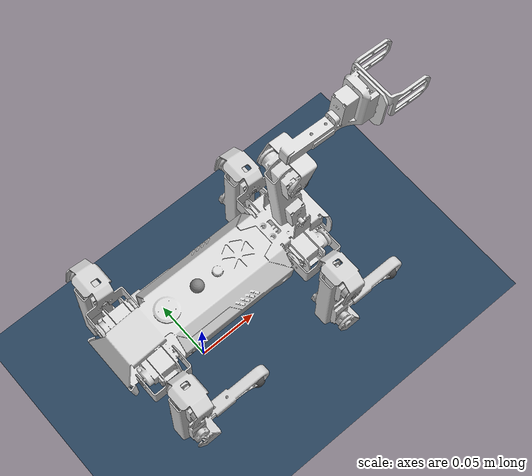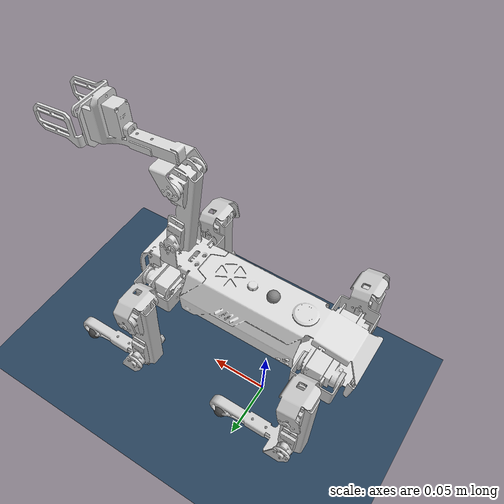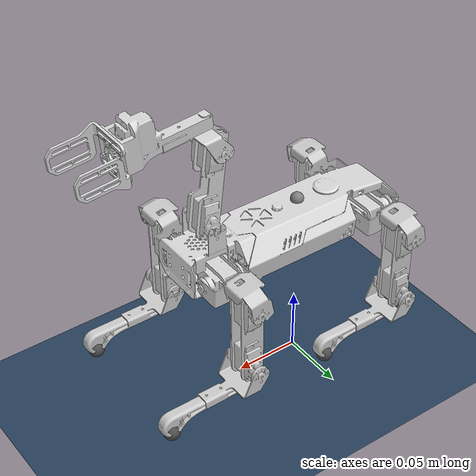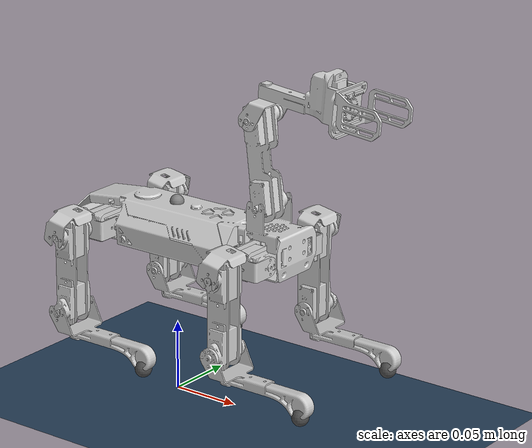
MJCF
<mujoco model="xgolite scene">
  <include file="xgolite.xml" />

  <statistic center="0 0 0.08" extent="0.45" />

  <visual>
    <headlight diffuse="0.6 0.6 0.6" ambient="0.3 0.3 0.3" specular="0 0 0" />
    <rgba haze="0.15 0.25 0.35 1" />
    <global azimuth="120" elevation="-15" />
  </visual>

  <asset>
    <texture type="skybox" builtin="gradient" rgb1="0.3 0.5 0.7" rgb2="0 0 0"
             width="512" height="3072" />
    <texture type="2d" name="groundplane" builtin="checker" mark="edge"
             rgb1="0.2 0.3 0.4" rgb2="0.1 0.2 0.3" markrgb="0.8 0.8 0.8"
             width="300" height="300" />
    <material name="groundplane" texture="groundplane" texuniform="true"
              texrepeat="5 5" reflectance="0.2" />
  </asset>

  <worldbody>
    <light pos="0 0 1.5" dir="0 0 -1" directional="true" />
    <geom name="floor" size="0 0 0.05" type="plane" material="groundplane" />
  </worldbody>

  <keyframe>
    <key name="stand"
         qpos="0 0 0.1159 1 0 0 0
               0 -0.90 0.28  0 -0.90 0.28  0 -0.90 0.28  0 -0.90 0.28" />
    <key name="urdf_zero"
         qpos="0 0 0.107 1 0 0 0
               0 0 0  0 0 0  0 0 0  0 0 0" />
  </keyframe>
</mujoco>

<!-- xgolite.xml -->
<mujoco model="xgolite">
  <compiler angle="radian" meshdir="meshes" />
  <option timestep="0.002" />

  <default>
    <joint damping="0.05" frictionloss="0.001" armature="0.002" />
    <default class="joint_motor">
      <position kp="5.0" kv="0.12" forcerange="-0.22 0.22" />
    </default>
    <default class="visual">
      <geom contype="0" conaffinity="0" density="0" group="1" />
    </default>
    <default class="collision_off">
      <geom contype="0" conaffinity="0" density="0" group="3" />
    </default>
  </default>

  <asset>
    <mesh name="Link_11" file="Link_11.STL" />
    <mesh name="Link_12" file="Link_12.STL" />
    <mesh name="Link_13" file="Link_13.STL" />
    <mesh name="Link_21" file="Link_21.STL" />
    <mesh name="Link_22" file="Link_22.STL" />
    <mesh name="Link_23" file="Link_23.STL" />
    <mesh name="Link_31" file="Link_31.STL" />
    <mesh name="Link_32" file="Link_32.STL" />
    <mesh name="Link_33" file="Link_33.STL" />
    <mesh name="Link_41" file="Link_41.STL" />
    <mesh name="Link_42" file="Link_42.STL" />
    <mesh name="Link_43" file="Link_43.STL" />
    <mesh name="Link_50" file="Link_50.STL" />
    <mesh name="Link_51" file="Link_51.STL" />
    <mesh name="Link_52" file="Link_52.STL" />
    <mesh name="Link_53" file="Link_53.STL" />
    <mesh name="base_link" file="base_link.STL" />
  </asset>

  <sensor>
    <framequat name="orientation" objtype="site" noise="0.001" objname="imu" />
    <gyro name="angular-velocity" site="imu" noise="0.005" />
    <gyro name="imu_ang_vel" site="imu" />
    <velocimeter name="imu_lin_vel" site="imu" />
    <accelerometer name="imu_accel" site="imu" />
    <subtreeangmom name="root_angmom" body="base" />
  </sensor>

  <worldbody>
    <body name="base" pos="0 0 0.14">
      <joint name="floating_base" type="free" />
      <inertial pos="0.04356602 0.00009192 0.00080861" mass="0.3778381" fullinertia="0.0006712271 0.001867972 0.001346259 -2.176181e-07 -0.0004660935 -9.16711e-07" />
      <geom class="visual" type="mesh" mesh="base_link" pos="0 0 0" quat="1 0 0 0" rgba="0.85 0.85 0.85 1" />
      <geom class="visual" type="mesh" mesh="base_link" pos="0 0 0" quat="1 0 0 0" rgba="0.85 0.85 0.85 1" />
      <geom class="visual" type="mesh" mesh="Link_53" pos="0.07976 0.016106 0.015289" quat="0.529269 0.529269 0.468908 -0.468908" rgba="0.85 0.85 0.85 1" />
      <geom class="visual" type="mesh" mesh="Link_53" pos="0.07976 0.016106 0.015289" quat="0.529269 0.529269 0.468908 -0.468908" rgba="0.85 0.85 0.85 1" />
      <geom class="visual" type="mesh" mesh="Link_52" pos="0.072542 0.016106 0.074753" quat="0.611876 0.611876 -0.354411 0.354411" rgba="0.85 0.85 0.85 1" />
      <geom class="visual" type="mesh" mesh="Link_52" pos="0.072542 0.016106 0.074753" quat="0.611876 0.611876 -0.354411 0.354411" rgba="0.85 0.85 0.85 1" />
      <geom class="visual" type="mesh" mesh="Link_51" pos="0.144234 0.000006 0.092979" quat="0.032365 0.032365 -0.706366 0.706366" rgba="0.85 0.85 0.85 1" />
      <geom class="visual" type="mesh" mesh="Link_51" pos="0.144234 0.000006 0.092979" quat="0.032365 0.032365 -0.706366 0.706366" rgba="0.85 0.85 0.85 1" />
      <geom class="visual" type="mesh" mesh="Link_50" pos="0.144234 0.000006 0.092979" quat="0.706366 -0.706366 0.032365 0.032365" rgba="0.85 0.85 0.85 1" />
      <geom class="visual" type="mesh" mesh="Link_50" pos="0.144234 0.000006 0.092979" quat="0.706366 -0.706366 0.032365 0.032365" rgba="0.85 0.85 0.85 1" />
      <geom name="base" type="box" size="0.090477 0.03435 0.026442" pos="0.01266 0.000006 -0.006491"
            density="0" contype="1" conaffinity="0" condim="1" group="3" />
      <site name="imu" pos="0 0 0" quat="1 0 0 0" />

      <body name="fl_hip" pos="0.097794 0.022506 -0.019901">
        <joint name="fl_hip_joint" pos="0 0 0" axis="1 0 0" range="-0.8283 1.1045" actuatorfrcrange="-0.22 0.22" />
        <inertial pos="-0.01793087 0.02930826 -0.00003285" mass="0.02021624" fullinertia="4.484471e-06 2.349163e-06 4.881753e-06 2.41143e-08 -4.226267e-07 -1.822547e-08" />
        <geom class="visual" type="mesh" mesh="Link_13" pos="0 0 0" quat="0.5 0.5 0.5 0.5" rgba="0.8 0.8 0.8 1" />
            <geom class="visual" type="mesh" mesh="Link_13" pos="0 0 0" quat="0.5 0.5 0.5 0.5" rgba="0.8 0.8 0.8 1" />
        <geom name="fl_hip_col" type="box" size="0.015 0.022 0.013" pos="0 0 0" class="collision_off" />
        <body name="fl_thigh" pos="-0.0161 0.046599 0">
          <joint name="fl_thigh_joint" pos="0 0 0" axis="0 -1 0" range="-1.7692 1.5135" actuatorfrcrange="-0.22 0.22" />
          <inertial pos="-0.00134002 -0.01562723 -0.04416079" mass="0.02128252" fullinertia="8.009481e-06 6.810089e-06 2.39069e-06 -6.981811e-08 4.968359e-07 4.329529e-07" />
          <geom class="visual" type="mesh" mesh="Link_12" pos="0 0 0" quat="0.5 -0.5 0.5 0.5" rgba="0.8 0.8 0.8 1" />
            <geom class="visual" type="mesh" mesh="Link_12" pos="0 0 0" quat="0.5 -0.5 0.5 0.5" rgba="0.8 0.8 0.8 1" />
          <geom name="fl_thigh" type="capsule" fromto="0 0 0 0 0 -0.0549" size="0.010" density="0" contype="1" conaffinity="0" condim="1" group="3" />
          <body name="fl_calf" pos="0 0 -0.0549">
            <joint name="fl_calf_joint" pos="0 0 0" axis="0 -1 0" range="-2.0146 1.5647" actuatorfrcrange="-0.22 0.22" />
            <inertial pos="0.02550979 -0.01751858 -0.01644801" mass="0.008291711" fullinertia="7.078578e-07 3.752423e-06 3.846524e-06 8.783708e-08 6.03516e-07 -2.915457e-08" />
            <geom class="visual" type="mesh" mesh="Link_11" pos="0 0 0" quat="0.707107 -0.707107 0 0" rgba="0.8 0.8 0.8 1" />
            <geom class="visual" type="mesh" mesh="Link_11" pos="0 0 0" quat="0.707107 -0.707107 0 0" rgba="0.8 0.8 0.8 1" />
            <geom name="fl_calf" type="capsule" fromto="0 0 0 0.062796 -0.01805 -0.031197" size="0.006" class="collision_off" />
            <geom name="fl_foot_pad" type="sphere" size="0.006" pos="0.062796 -0.01805 -0.031197" density="0" contype="1" conaffinity="0" condim="3" rgba="0.3 0.3 0.3 1" />
            <site name="fl" pos="0.062796 -0.01805 -0.031197" type="sphere" size="0.004" />
          </body>
        </body>
      </body>
      <body name="fr_hip" pos="0.097794 -0.022494 -0.019901">
        <joint name="fr_hip_joint" pos="0 0 0" axis="-1 0 0" range="-0.7926 1.0278" actuatorfrcrange="-0.22 0.22" />
        <inertial pos="-0.01793072 -0.02930438 -0.00003289" mass="0.02021624" fullinertia="4.484531e-06 2.349129e-06 4.881813e-06 -2.409765e-08 -4.226077e-07 1.819006e-08" />
        <geom class="visual" type="mesh" mesh="Link_23" pos="0 0 0" quat="0.5 0.5 0.5 0.5" rgba="0.8 0.8 0.8 1" />
            <geom class="visual" type="mesh" mesh="Link_23" pos="0 0 0" quat="0.5 0.5 0.5 0.5" rgba="0.8 0.8 0.8 1" />
        <geom name="fr_hip_col" type="box" size="0.015 0.022 0.013" pos="0 0 0" class="collision_off" />
        <body name="fr_thigh" pos="-0.0161 -0.046599 0">
          <joint name="fr_thigh_joint" pos="0 0 0" axis="0 -1 0" range="-1.805 1.4266" actuatorfrcrange="-0.22 0.22" />
          <inertial pos="-0.00134006 0.01563126 -0.04416092" mass="0.02128252" fullinertia="8.009556e-06 6.81012e-06 2.390721e-06 6.982942e-08 4.968354e-07 -4.330395e-07" />
          <geom class="visual" type="mesh" mesh="Link_22" pos="0 0 0" quat="0.5 -0.5 0.5 0.5" rgba="0.8 0.8 0.8 1" />
            <geom class="visual" type="mesh" mesh="Link_22" pos="0 0 0" quat="0.5 -0.5 0.5 0.5" rgba="0.8 0.8 0.8 1" />
          <geom name="fr_thigh" type="capsule" fromto="0 0 0 0 0 -0.0549" size="0.010" density="0" contype="1" conaffinity="0" condim="1" group="3" />
          <body name="fr_calf" pos="0 0 -0.0549">
            <joint name="fr_calf_joint" pos="0 0 0" axis="0 -1 0" range="-1.943 1.6618" actuatorfrcrange="-0.22 0.22" />
            <inertial pos="0.02550977 0.01752298 -0.01644799" mass="0.008291706" fullinertia="7.078577e-07 3.752421e-06 3.846522e-06 -8.783705e-08 6.035157e-07 2.915456e-08" />
            <geom class="visual" type="mesh" mesh="Link_21" pos="0 0 0" quat="0.707107 -0.707107 0 0" rgba="0.8 0.8 0.8 1" />
            <geom class="visual" type="mesh" mesh="Link_21" pos="0 0 0" quat="0.707107 -0.707107 0 0" rgba="0.8 0.8 0.8 1" />
            <geom name="fr_calf" type="capsule" fromto="0 0 0 0.062796 0.01805 -0.031197" size="0.006" class="collision_off" />
            <geom name="fr_foot_pad" type="sphere" size="0.006" pos="0.062796 0.01805 -0.031197" density="0" contype="1" conaffinity="0" condim="3" rgba="0.3 0.3 0.3 1" />
            <site name="fr" pos="0.062796 0.01805 -0.031197" type="sphere" size="0.004" />
          </body>
        </body>
      </body>
      <body name="bl_hip" pos="-0.068306 0.022506 -0.019901">
        <joint name="bl_hip_joint" pos="0 0 0" axis="1 0 0" range="-0.8488 1.2681" actuatorfrcrange="-0.22 0.22" />
        <inertial pos="0.01426913 0.02930826 -0.00003285" mass="0.02021624" fullinertia="4.484471e-06 2.349163e-06 4.881753e-06 2.41143e-08 -4.226267e-07 -1.822547e-08" />
        <geom class="visual" type="mesh" mesh="Link_43" pos="0 0 0" quat="0.5 0.5 -0.5 -0.5" rgba="0.8 0.8 0.8 1" />
            <geom class="visual" type="mesh" mesh="Link_43" pos="0 0 0" quat="0.5 0.5 -0.5 -0.5" rgba="0.8 0.8 0.8 1" />
        <geom name="bl_hip_col" type="box" size="0.015 0.022 0.013" pos="0 0 0" class="collision_off" />
        <body name="bl_thigh" pos="0.0161 0.046599 0">
          <joint name="bl_thigh_joint" pos="0 0 0" axis="0 -1 0" range="-1.8152 1.4828" actuatorfrcrange="-0.22 0.22" />
          <inertial pos="-0.00133999 -0.01562723 -0.04416076" mass="0.02128252" fullinertia="8.009464e-06 6.810073e-06 2.390691e-06 -6.982746e-08 4.968418e-07 4.329414e-07" />
          <geom class="visual" type="mesh" mesh="Link_42" pos="0 0 0" quat="0.5 -0.5 0.5 0.5" rgba="0.8 0.8 0.8 1" />
            <geom class="visual" type="mesh" mesh="Link_42" pos="0 0 0" quat="0.5 -0.5 0.5 0.5" rgba="0.8 0.8 0.8 1" />
          <geom name="bl_thigh" type="capsule" fromto="0 0 0 0 0 -0.0549" size="0.010" density="0" contype="1" conaffinity="0" condim="1" group="3" />
          <body name="bl_calf" pos="0 0 -0.0549">
            <joint name="bl_calf_joint" pos="0 0 0" axis="0 -1 0" range="-1.8766 1.6567" actuatorfrcrange="-0.22 0.22" />
            <inertial pos="0.02550979 -0.01751858 -0.01644801" mass="0.008291711" fullinertia="7.078578e-07 3.752423e-06 3.846524e-06 8.783708e-08 6.03516e-07 -2.915457e-08" />
            <geom class="visual" type="mesh" mesh="Link_41" pos="0 0 0" quat="0.707107 -0.707107 0 0" rgba="0.8 0.8 0.8 1" />
            <geom class="visual" type="mesh" mesh="Link_41" pos="0 0 0" quat="0.707107 -0.707107 0 0" rgba="0.8 0.8 0.8 1" />
            <geom name="bl_calf" type="capsule" fromto="0 0 0 0.062796 -0.01805 -0.031197" size="0.006" class="collision_off" />
            <geom name="bl_foot_pad" type="sphere" size="0.006" pos="0.062796 -0.01805 -0.031197" density="0" contype="1" conaffinity="0" condim="3" rgba="0.3 0.3 0.3 1" />
            <site name="bl" pos="0.062796 -0.01805 -0.031197" type="sphere" size="0.004" />
          </body>
        </body>
      </body>
      <body name="br_hip" pos="-0.068306 -0.022494 -0.019901">
        <joint name="br_hip_joint" pos="0 0 0" axis="-1 0 0" range="-0.8335 1.2681" actuatorfrcrange="-0.22 0.22" />
        <inertial pos="0.01426928 -0.02930438 -0.00003291" mass="0.02021624" fullinertia="4.484531e-06 2.349129e-06 4.881813e-06 -2.409765e-08 -4.226077e-07 1.819006e-08" />
        <geom class="visual" type="mesh" mesh="Link_33" pos="0 0 0" quat="0.5 0.5 -0.5 -0.5" rgba="0.8 0.8 0.8 1" />
            <geom class="visual" type="mesh" mesh="Link_33" pos="0 0 0" quat="0.5 0.5 -0.5 -0.5" rgba="0.8 0.8 0.8 1" />
        <geom name="br_hip_col" type="box" size="0.015 0.022 0.013" pos="0 0 0" class="collision_off" />
        <body name="br_thigh" pos="0.0161 -0.046599 0">
          <joint name="br_thigh_joint" pos="0 0 0" axis="0 -1 0" range="-1.7999 1.3448" actuatorfrcrange="-0.22 0.22" />
          <inertial pos="-0.00134009 0.01563126 -0.04416088" mass="0.02128252" fullinertia="8.00953e-06 6.810091e-06 2.390718e-06 6.981414e-08 4.9682e-07 -4.330225e-07" />
          <geom class="visual" type="mesh" mesh="Link_32" pos="0 0 0" quat="0.5 -0.5 0.5 0.5" rgba="0.8 0.8 0.8 1" />
            <geom class="visual" type="mesh" mesh="Link_32" pos="0 0 0" quat="0.5 -0.5 0.5 0.5" rgba="0.8 0.8 0.8 1" />
          <geom name="br_thigh" type="capsule" fromto="0 0 0 0 0 -0.0549" size="0.010" density="0" contype="1" conaffinity="0" condim="1" group="3" />
          <body name="br_calf" pos="0 0 -0.0549">
            <joint name="br_calf_joint" pos="0 0 0" axis="0 -1 0" range="-1.8766 1.7385" actuatorfrcrange="-0.22 0.22" />
            <inertial pos="0.02550978 0.01752298 -0.01644802" mass="0.008291706" fullinertia="7.078577e-07 3.752421e-06 3.846522e-06 -8.783705e-08 6.035157e-07 2.915456e-08" />
            <geom class="visual" type="mesh" mesh="Link_31" pos="0 0 0" quat="0.707107 -0.707107 0 0" rgba="0.8 0.8 0.8 1" />
            <geom class="visual" type="mesh" mesh="Link_31" pos="0 0 0" quat="0.707107 -0.707107 0 0" rgba="0.8 0.8 0.8 1" />
            <geom name="br_calf" type="capsule" fromto="0 0 0 0.062796 0.01805 -0.031197" size="0.006" class="collision_off" />
            <geom name="br_foot_pad" type="sphere" size="0.006" pos="0.062796 0.01805 -0.031197" density="0" contype="1" conaffinity="0" condim="3" rgba="0.3 0.3 0.3 1" />
            <site name="br" pos="0.062796 0.01805 -0.031197" type="sphere" size="0.004" />
          </body>
        </body>
      </body>
    </body>
  </worldbody>

  <actuator>
    <position name="fl_hip_joint" joint="fl_hip_joint" ctrlrange="-0.8283 1.1045" class="joint_motor" />
    <position name="fl_thigh_joint" joint="fl_thigh_joint" ctrlrange="-1.7692 1.5135" class="joint_motor" />
    <position name="fl_calf_joint" joint="fl_calf_joint" ctrlrange="-2.0146 1.5647" class="joint_motor" />
    <position name="fr_hip_joint" joint="fr_hip_joint" ctrlrange="-0.7926 1.0278" class="joint_motor" />
    <position name="fr_thigh_joint" joint="fr_thigh_joint" ctrlrange="-1.805 1.4266" class="joint_motor" />
    <position name="fr_calf_joint" joint="fr_calf_joint" ctrlrange="-1.943 1.6618" class="joint_motor" />
    <position name="bl_hip_joint" joint="bl_hip_joint" ctrlrange="-0.8488 1.2681" class="joint_motor" />
    <position name="bl_thigh_joint" joint="bl_thigh_joint" ctrlrange="-1.8152 1.4828" class="joint_motor" />
    <position name="bl_calf_joint" joint="bl_calf_joint" ctrlrange="-1.8766 1.6567" class="joint_motor" />
    <position name="br_hip_joint" joint="br_hip_joint" ctrlrange="-0.8335 1.2681" class="joint_motor" />
    <position name="br_thigh_joint" joint="br_thigh_joint" ctrlrange="-1.7999 1.3448" class="joint_motor" />
    <position name="br_calf_joint" joint="br_calf_joint" ctrlrange="-1.8766 1.7385" class="joint_motor" />
  </actuator>
</mujoco>
